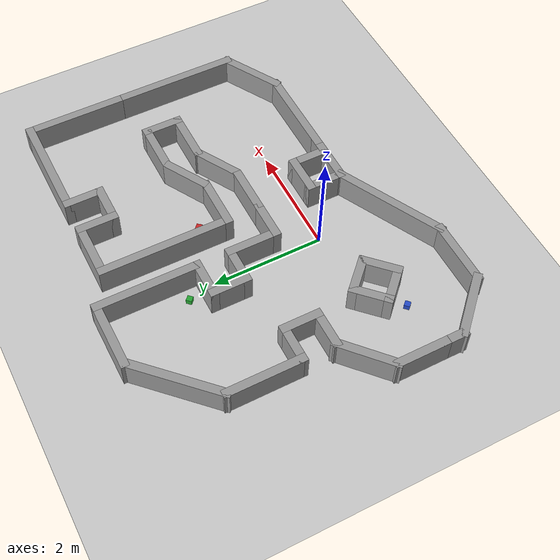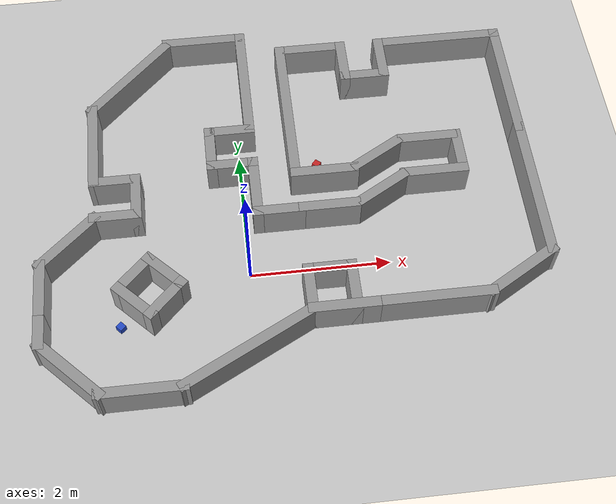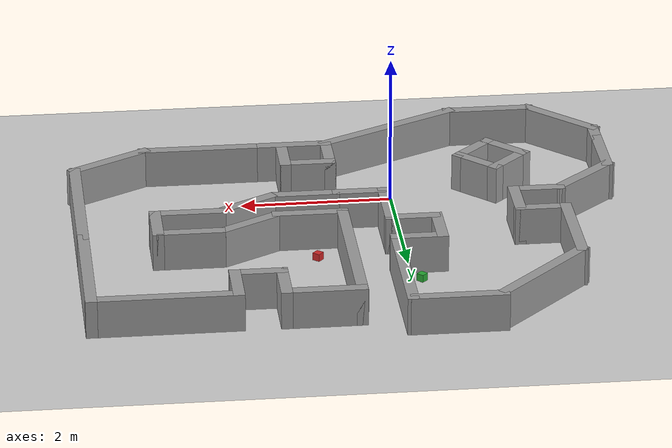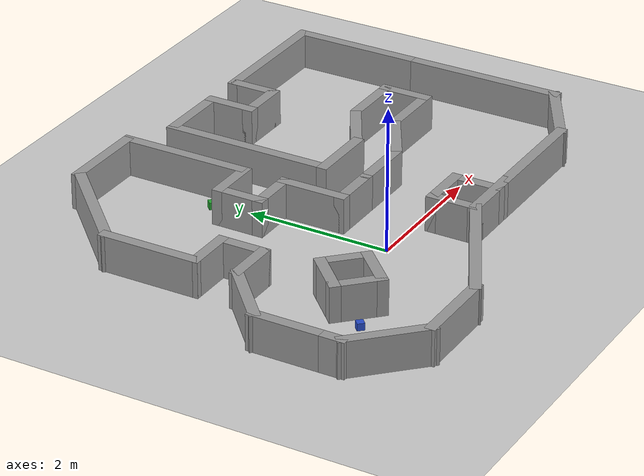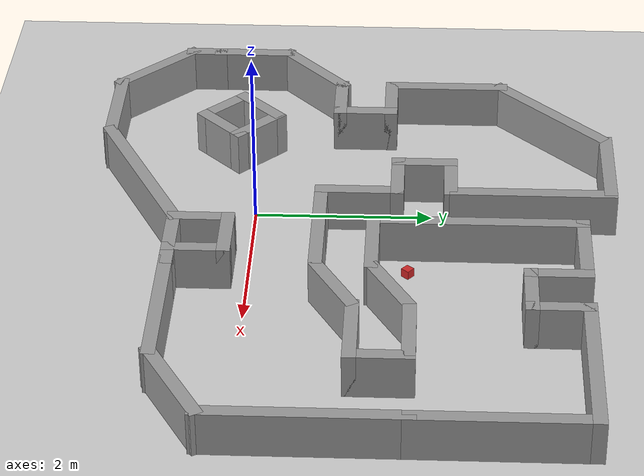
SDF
<sdf version="1.7">
 <world name="default">
  <light name="sun" type="directional">
   <pose>0 0 10 0 -0 0</pose>
   <diffuse>0.8 0.8 0.8 1</diffuse>
   <specular>0.2 0.2 0.2 1</specular>
   <attenuation>
    <range>1000</range>
    <constant>0.9</constant>
    <linear>0.01</linear>
    <quadratic>0.001</quadratic>
   </attenuation>
   <direction>-0.5 0.1 -0.9</direction>
   <spot><inner_angle>0</inner_angle><outer_angle>0</outer_angle><falloff>0</falloff></spot>
  </light>
  <model name="ground_plane">
   <static>1</static>
   <link name="link">
    <collision name="collision">
     <geometry><plane><normal>0 0 1</normal><size>100 100</size></plane></geometry>
     <surface><friction><ode><mu>100</mu><mu2>50</mu2></ode></friction></surface>
    </collision>
    <visual name="visual">
     <cast_shadows>0</cast_shadows>
     <geometry><plane><normal>0 0 1</normal><size>100 100</size></plane></geometry>
     <material>
      <script><uri>file://media/materials/scripts/gazebo.material</uri><name>Gazebo/Grey</name></script>
     </material>
    </visual>
   </link>
  </model>
  <gravity>0 0 -9.8</gravity>
  <magnetic_field>6e-06 2.3e-05 -4.2e-05</magnetic_field>
  <atmosphere type="adiabatic"/>
  <physics type="ode">
   <max_step_size>0.001</max_step_size>
   <real_time_factor>1</real_time_factor>
   <real_time_update_rate>1000</real_time_update_rate>
  </physics>
  <scene><ambient>0.4 0.4 0.4 1</ambient><background>0.7 0.7 0.7 1</background><shadows>1</shadows></scene>
  <audio><device>default</device></audio>
  <spherical_coordinates>
   <surface_model>EARTH_WGS84</surface_model>
   <latitude_deg>0</latitude_deg>
   <longitude_deg>0</longitude_deg>
   <elevation>0</elevation>
   <heading_deg>0</heading_deg>
  </spherical_coordinates>
  <model name="small_room">
   <pose>0.654132 1.13972 0 0 -0 0</pose>
   <link name="Wall_188">
    <collision name="Wall_188_Collision">
     <geometry><box><size>1 0.15 0.5</size></box></geometry>
     <pose>0 0 0.25 0 -0 0</pose>
    </collision>
    <visual name="Wall_188_Visual">
     <pose>0 0 0.25 0 -0 0</pose>
     <geometry><box><size>1 0.15 0.5</size></box></geometry>
     <material>
      <script><uri>file://media/materials/scripts/gazebo.material</uri><name>Gazebo/Grey</name></script>
      <ambient>1 1 1 1</ambient>
     </material>
     <meta><layer>0</layer></meta>
    </visual>
    <pose>0.557348 -1.97824 0 0 -0 0</pose>
   </link>
   <link name="Wall_192">
    <collision name="Wall_192_Collision">
     <geometry><box><size>1.75 0.15 0.5</size></box></geometry>
     <pose>0 0 0.25 0 -0 0</pose>
    </collision>
    <visual name="Wall_192_Visual">
     <pose>0 0 0.25 0 -0 0</pose>
     <geometry><box><size>1.75 0.15 0.5</size></box></geometry>
     <material>
      <script><uri>file://media/materials/scripts/gazebo.material</uri><name>Gazebo/Grey</name></script>
      <ambient>1 1 1 1</ambient>
     </material>
     <meta><layer>0</layer></meta>
    </visual>
    <pose>1.78235 -1.97824 0 0 -0 0</pose>
   </link>
   <link name="Wall_214">
    <collision name="Wall_214_Collision">
     <geometry><box><size>0.75 0.15 0.5</size></box></geometry>
     <pose>0 0 0.25 0 -0 0</pose>
    </collision>
    <visual name="Wall_214_Visual">
     <pose>0 0 0.25 0 -0 0</pose>
     <geometry><box><size>0.75 0.15 0.5</size></box></geometry>
     <material>
      <script><uri>file://media/materials/scripts/gazebo.material</uri><name>Gazebo/Grey</name></script>
      <ambient>1 1 1 1</ambient>
     </material>
     <meta><layer>0</layer></meta>
    </visual>
    <pose>0.132348 -1.67824 0 0 -0 1.5708</pose>
   </link>
   <link name="Wall_215">
    <collision name="Wall_215_Collision">
     <geometry><box><size>0.75 0.15 0.5</size></box></geometry>
     <pose>0 0 0.25 0 -0 0</pose>
    </collision>
    <visual name="Wall_215_Visual">
     <pose>0 0 0.25 0 -0 0</pose>
     <geometry><box><size>0.75 0.15 0.5</size></box></geometry>
     <material>
      <script><uri>file://media/materials/scripts/gazebo.material</uri><name>Gazebo/Grey</name></script>
      <ambient>1 1 1 1</ambient>
     </material>
     <meta><layer>0</layer></meta>
    </visual>
    <pose>0.432348 -1.37824 0 0 -0 0</pose>
   </link>
   <link name="Wall_218">
    <collision name="Wall_218_Collision">
     <geometry><box><size>0.75 0.15 0.5</size></box></geometry>
     <pose>0 0 0.25 0 -0 0</pose>
    </collision>
    <visual name="Wall_218_Visual">
     <pose>0 0 0.25 0 -0 0</pose>
     <geometry><box><size>0.75 0.15 0.5</size></box></geometry>
     <material>
      <script><uri>file://media/materials/scripts/gazebo.material</uri><name>Gazebo/Grey</name></script>
      <ambient>1 1 1 1</ambient>
     </material>
     <meta><layer>0</layer></meta>
    </visual>
    <pose>0.732348 -1.67824 0 0 -0 -1.5708</pose>
   </link>
   <link name="Wall_223">
    <collision name="Wall_223_Collision">
     <geometry><box><size>0.89 0.15 0.5</size></box></geometry>
     <pose>0 0 0.25 0 -0 0</pose>
    </collision>
    <visual name="Wall_223_Visual">
     <pose>0 0 0.25 0 -0 0</pose>
     <geometry><box><size>0.89 0.15 0.5</size></box></geometry>
     <material>
      <script><uri>file://media/materials/scripts/gazebo.material</uri><name>Gazebo/Grey</name></script>
      <ambient>1 1 1 1</ambient>
     </material>
     <meta><layer>0</layer></meta>
    </visual>
    <pose>2.14347 0.646756 0 0 -0 3.14159</pose>
   </link>
   <link name="Wall_226">
    <collision name="Wall_226_Collision">
     <geometry><box><size>1 0.15 0.5</size></box></geometry>
     <pose>0 0 0.25 0 -0 0</pose>
    </collision>
    <visual name="Wall_226_Visual">
     <pose>0 0 0.25 0 -0 0</pose>
     <geometry><box><size>1 0.15 0.5</size></box></geometry>
     <material>
      <script><uri>file://media/materials/scripts/gazebo.material</uri><name>Gazebo/Grey</name></script>
      <ambient>1 1 1 1</ambient>
     </material>
     <meta><layer>0</layer></meta>
    </visual>
    <pose>0.557348 0.221756 0 0 -0 3.14159</pose>
   </link>
   <link name="Wall_228">
    <collision name="Wall_228_Collision">
     <geometry><box><size>0.89 0.15 0.5</size></box></geometry>
     <pose>0 0 0.25 0 -0 0</pose>
    </collision>
    <visual name="Wall_228_Visual">
     <pose>0 0 0.25 0 -0 0</pose>
     <geometry><box><size>0.89 0.15 0.5</size></box></geometry>
     <material>
      <script><uri>file://media/materials/scripts/gazebo.material</uri><name>Gazebo/Grey</name></script>
      <ambient>1 1 1 1</ambient>
     </material>
     <meta><layer>0</layer></meta>
    </visual>
    <pose>1.35041 0.434256 0 0 -0 0.523599</pose>
   </link>
   <link name="Wall_230">
    <collision name="Wall_230_Collision">
     <geometry><box><size>1.25 0.15 0.5</size></box></geometry>
     <pose>0 0 0.25 0 -0 0</pose>
    </collision>
    <visual name="Wall_230_Visual">
     <pose>0 0 0.25 0 -0 0</pose>
     <geometry><box><size>1.25 0.15 0.5</size></box></geometry>
     <material>
      <script><uri>file://media/materials/scripts/gazebo.material</uri><name>Gazebo/Grey</name></script>
      <ambient>1 1 1 1</ambient>
     </material>
     <meta><layer>0</layer></meta>
    </visual>
    <pose>3.05866 -1.70324 0 0 -0 0.523599</pose>
   </link>
   <link name="Wall_231">
    <collision name="Wall_231_Collision">
     <geometry><box><size>2.25 0.15 0.5</size></box></geometry>
     <pose>0 0 0.25 0 -0 0</pose>
    </collision>
    <visual name="Wall_231_Visual">
     <pose>0 0 0.25 0 -0 0</pose>
     <geometry><box><size>2.25 0.15 0.5</size></box></geometry>
     <material>
      <script><uri>file://media/materials/scripts/gazebo.material</uri><name>Gazebo/Grey</name></script>
      <ambient>1 1 1 1</ambient>
     </material>
     <meta><layer>0</layer></meta>
    </visual>
    <pose>3.53498 -0.378244 0 0 -0 1.5708</pose>
   </link>
   <link name="Wall_233">
    <collision name="Wall_233_Collision">
     <geometry><box><size>2 0.15 0.5</size></box></geometry>
     <pose>0 0 0.25 0 -0 0</pose>
    </collision>
    <visual name="Wall_233_Visual">
     <pose>0 0 0.25 0 -0 0</pose>
     <geometry><box><size>2 0.15 0.5</size></box></geometry>
     <material>
      <script><uri>file://media/materials/scripts/gazebo.material</uri><name>Gazebo/Grey</name></script>
      <ambient>1 1 1 1</ambient>
     </material>
     <meta><layer>0</layer></meta>
    </visual>
    <pose>3.53498 1.59676 0 0 -0 1.5708</pose>
   </link>
   <link name="Wall_234">
    <collision name="Wall_234_Collision">
     <geometry><box><size>2 0.15 0.5</size></box></geometry>
     <pose>0 0 0.25 0 -0 0</pose>
    </collision>
    <visual name="Wall_234_Visual">
     <pose>0 0 0.25 0 -0 0</pose>
     <geometry><box><size>2 0.15 0.5</size></box></geometry>
     <material>
      <script><uri>file://media/materials/scripts/gazebo.material</uri><name>Gazebo/Grey</name></script>
      <ambient>1 1 1 1</ambient>
     </material>
     <meta><layer>0</layer></meta>
    </visual>
    <pose>2.60998 2.52176 0 0 -0 3.14159</pose>
   </link>
   <link name="Wall_235">
    <collision name="Wall_235_Collision">
     <geometry><box><size>0.75 0.15 0.5</size></box></geometry>
     <pose>0 0 0.25 0 -0 0</pose>
    </collision>
    <visual name="Wall_235_Visual">
     <pose>0 0 0.25 0 -0 0</pose>
     <geometry><box><size>0.75 0.15 0.5</size></box></geometry>
     <material>
      <script><uri>file://media/materials/scripts/gazebo.material</uri><name>Gazebo/Grey</name></script>
      <ambient>1 1 1 1</ambient>
     </material>
     <meta><layer>0</layer></meta>
    </visual>
    <pose>1.68498 2.22176 0 0 -0 -1.5708</pose>
   </link>
   <link name="Wall_236">
    <collision name="Wall_236_Collision">
     <geometry><box><size>0.75 0.15 0.5</size></box></geometry>
     <pose>0 0 0.25 0 -0 0</pose>
    </collision>
    <visual name="Wall_236_Visual">
     <pose>0 0 0.25 0 -0 0</pose>
     <geometry><box><size>0.75 0.15 0.5</size></box></geometry>
     <material>
      <script><uri>file://media/materials/scripts/gazebo.material</uri><name>Gazebo/Grey</name></script>
      <ambient>1 1 1 1</ambient>
     </material>
     <meta><layer>0</layer></meta>
    </visual>
    <pose>1.38498 1.92176 0 0 -0 3.14159</pose>
   </link>
   <link name="Wall_237">
    <collision name="Wall_237_Collision">
     <geometry><box><size>0.75 0.15 0.5</size></box></geometry>
     <pose>0 0 0.25 0 -0 0</pose>
    </collision>
    <visual name="Wall_237_Visual">
     <pose>0 0 0.25 0 -0 0</pose>
     <geometry><box><size>0.75 0.15 0.5</size></box></geometry>
     <material>
      <script><uri>file://media/materials/scripts/gazebo.material</uri><name>Gazebo/Grey</name></script>
      <ambient>1 1 1 1</ambient>
     </material>
     <meta><layer>0</layer></meta>
    </visual>
    <pose>1.08498 2.22176 0 0 -0 1.5708</pose>
   </link>
   <link name="Wall_238">
    <collision name="Wall_238_Collision">
     <geometry><box><size>0.95 0.15 0.5</size></box></geometry>
     <pose>0 0 0.25 0 -0 0</pose>
    </collision>
    <visual name="Wall_238_Visual">
     <pose>0 0 0.25 0 -0 0</pose>
     <geometry><box><size>0.95 0.15 0.5</size></box></geometry>
     <material>
      <script><uri>file://media/materials/scripts/gazebo.material</uri><name>Gazebo/Grey</name></script>
      <ambient>1 1 1 1</ambient>
     </material>
     <meta><layer>0</layer></meta>
    </visual>
    <pose>0.534976 2.52176 0 0 -0 3.14159</pose>
   </link>
   <link name="Wall_249">
    <collision name="Wall_249_Collision">
     <geometry><box><size>2.4 0.15 0.5</size></box></geometry>
     <pose>0 0 0.25 0 -0 0</pose>
    </collision>
    <visual name="Wall_249_Visual">
     <pose>0 0 0.25 0 -0 0</pose>
     <geometry><box><size>2.4 0.15 0.5</size></box></geometry>
     <material>
      <script><uri>file://media/materials/scripts/gazebo.material</uri><name>Gazebo/Grey</name></script>
      <ambient>1 1 1 1</ambient>
     </material>
     <meta><layer>0</layer></meta>
    </visual>
    <pose>0.132348 1.39676 0 0 -0 1.5708</pose>
   </link>
   <link name="Wall_251">
    <collision name="Wall_251_Collision">
     <geometry><box><size>0.75 0.15 0.5</size></box></geometry>
     <pose>0 0 0.25 0 -0 0</pose>
    </collision>
    <visual name="Wall_251_Visual">
     <pose>0 0 0.25 0 -0 0</pose>
     <geometry><box><size>0.75 0.15 0.5</size></box></geometry>
     <material>
      <script><uri>file://media/materials/scripts/gazebo.material</uri><name>Gazebo/Grey</name></script>
      <ambient>1 1 1 1</ambient>
     </material>
     <meta><layer>0</layer></meta>
    </visual>
    <pose>2.56847 0.346756 0 0 -0 -1.5708</pose>
   </link>
   <link name="Wall_252">
    <collision name="Wall_252_Collision">
     <geometry><box><size>1 0.15 0.5</size></box></geometry>
     <pose>0 0 0.25 0 -0 0</pose>
    </collision>
    <visual name="Wall_252_Visual">
     <pose>0 0 0.25 0 -0 0</pose>
     <geometry><box><size>1 0.15 0.5</size></box></geometry>
     <material>
      <script><uri>file://media/materials/scripts/gazebo.material</uri><name>Gazebo/Grey</name></script>
      <ambient>1 1 1 1</ambient>
     </material>
     <meta><layer>0</layer></meta>
    </visual>
    <pose>2.14347 0.046756 0 0 -0 3.14159</pose>
   </link>
   <link name="Wall_253">
    <collision name="Wall_253_Collision">
     <geometry><box><size>0.89 0.15 0.5</size></box></geometry>
     <pose>0 0 0.25 0 -0 0</pose>
    </collision>
    <visual name="Wall_253_Visual">
     <pose>0 0 0.25 0 -0 0</pose>
     <geometry><box><size>0.89 0.15 0.5</size></box></geometry>
     <material>
      <script><uri>file://media/materials/scripts/gazebo.material</uri><name>Gazebo/Grey</name></script>
      <ambient>1 1 1 1</ambient>
     </material>
     <meta><layer>0</layer></meta>
    </visual>
    <pose>1.35041 -0.165744 0 0 -0 -2.61799</pose>
   </link>
   <link name="Wall_254">
    <collision name="Wall_254_Collision">
     <geometry><box><size>0.89 0.15 0.5</size></box></geometry>
     <pose>0 0 0.25 0 -0 0</pose>
    </collision>
    <visual name="Wall_254_Visual">
     <pose>0 0 0.25 0 -0 0</pose>
     <geometry><box><size>0.89 0.15 0.5</size></box></geometry>
     <material>
      <script><uri>file://media/materials/scripts/gazebo.material</uri><name>Gazebo/Grey</name></script>
      <ambient>1 1 1 1</ambient>
     </material>
     <meta><layer>0</layer></meta>
    </visual>
    <pose>0.557348 -0.378244 0 0 -0 3.14159</pose>
   </link>
   <link name="Wall_256">
    <collision name="Wall_256_Collision">
     <geometry><box><size>0.75 0.15 0.5</size></box></geometry>
     <pose>0 0 0.25 0 -0 0</pose>
    </collision>
    <visual name="Wall_256_Visual">
     <pose>0 0 0.25 0 -0 0</pose>
     <geometry><box><size>0.75 0.15 0.5</size></box></geometry>
     <material>
      <script><uri>file://media/materials/scripts/gazebo.material</uri><name>Gazebo/Grey</name></script>
      <ambient>1 1 1 1</ambient>
     </material>
     <meta><layer>0</layer></meta>
    </visual>
    <pose>-0.167652 -0.378244 0 0 -0 3.14159</pose>
   </link>
   <link name="Wall_257">
    <collision name="Wall_257_Collision">
     <geometry><box><size>1 0.15 0.5</size></box></geometry>
     <pose>0 0 0.25 0 -0 0</pose>
    </collision>
    <visual name="Wall_257_Visual">
     <pose>0 0 0.25 0 -0 0</pose>
     <geometry><box><size>1 0.15 0.5</size></box></geometry>
     <material>
      <script><uri>file://media/materials/scripts/gazebo.material</uri><name>Gazebo/Grey</name></script>
      <ambient>1 1 1 1</ambient>
     </material>
     <meta><layer>0</layer></meta>
    </visual>
    <pose>-0.467652 0.046756 0 0 -0 1.5708</pose>
   </link>
   <link name="Wall_258">
    <collision name="Wall_258_Collision">
     <geometry><box><size>0.75 0.15 0.5</size></box></geometry>
     <pose>0 0 0.25 0 -0 0</pose>
    </collision>
    <visual name="Wall_258_Visual">
     <pose>0 0 0.25 0 -0 0</pose>
     <geometry><box><size>0.75 0.15 0.5</size></box></geometry>
     <material>
      <script><uri>file://media/materials/scripts/gazebo.material</uri><name>Gazebo/Grey</name></script>
      <ambient>1 1 1 1</ambient>
     </material>
     <meta><layer>0</layer></meta>
    </visual>
    <pose>-0.767652 0.471756 0 0 -0 3.14159</pose>
   </link>
   <link name="Wall_259">
    <collision name="Wall_259_Collision">
     <geometry><box><size>0.75 0.15 0.5</size></box></geometry>
     <pose>0 0 0.25 0 -0 0</pose>
    </collision>
    <visual name="Wall_259_Visual">
     <pose>0 0 0.25 0 -0 0</pose>
     <geometry><box><size>0.75 0.15 0.5</size></box></geometry>
     <material>
      <script><uri>file://media/materials/scripts/gazebo.material</uri><name>Gazebo/Grey</name></script>
      <ambient>1 1 1 1</ambient>
     </material>
     <meta><layer>0</layer></meta>
    </visual>
    <pose>-1.06765 0.771756 0 0 -0 1.5708</pose>
   </link>
   <link name="Wall_260">
    <collision name="Wall_260_Collision">
     <geometry><box><size>0.75 0.15 0.5</size></box></geometry>
     <pose>0 0 0.25 0 -0 0</pose>
    </collision>
    <visual name="Wall_260_Visual">
     <pose>0 0 0.25 0 -0 0</pose>
     <geometry><box><size>0.75 0.15 0.5</size></box></geometry>
     <material>
      <script><uri>file://media/materials/scripts/gazebo.material</uri><name>Gazebo/Grey</name></script>
      <ambient>1 1 1 1</ambient>
     </material>
     <meta><layer>0</layer></meta>
    </visual>
    <pose>-0.767652 1.07176 0 0 -0 0</pose>
   </link>
   <link name="Wall_261">
    <collision name="Wall_261_Collision">
     <geometry><box><size>1.88 0.15 0.5</size></box></geometry>
     <pose>0 0 0.25 0 -0 0</pose>
    </collision>
    <visual name="Wall_261_Visual">
     <pose>0 0 0.25 0 -0 0</pose>
     <geometry><box><size>1.88 0.15 0.5</size></box></geometry>
     <material>
      <script><uri>file://media/materials/scripts/gazebo.material</uri><name>Gazebo/Grey</name></script>
      <ambient>1 1 1 1</ambient>
     </material>
     <meta><layer>0</layer></meta>
    </visual>
    <pose>-0.467652 1.99676 0 0 -0 1.5708</pose>
   </link>
   <link name="Wall_270">
    <collision name="Wall_270_Collision">
     <geometry><box><size>1.75 0.15 0.5</size></box></geometry>
     <pose>0 0 0.25 0 -0 0</pose>
    </collision>
    <visual name="Wall_270_Visual">
     <pose>0 0 0.25 0 -0 0</pose>
     <geometry><box><size>1.75 0.15 0.5</size></box></geometry>
     <material>
      <script><uri>file://media/materials/scripts/gazebo.material</uri><name>Gazebo/Grey</name></script>
      <ambient>1 1 1 1</ambient>
     </material>
     <meta><layer>0</layer></meta>
    </visual>
    <pose>-2.22062 2.23744 0 0 -0 0.785398</pose>
   </link>
   <link name="Wall_271">
    <collision name="Wall_271_Collision">
     <geometry><box><size>1.25 0.15 0.5</size></box></geometry>
     <pose>0 0 0.25 0 -0 0</pose>
    </collision>
    <visual name="Wall_271_Visual">
     <pose>0 0 0.25 0 -0 0</pose>
     <geometry><box><size>1.25 0.15 0.5</size></box></geometry>
     <material>
      <script><uri>file://media/materials/scripts/gazebo.material</uri><name>Gazebo/Grey</name></script>
      <ambient>1 1 1 1</ambient>
     </material>
     <meta><layer>0</layer></meta>
    </visual>
    <pose>-1.06129 2.86244 0 0 -0 0</pose>
   </link>
   <link name="Wall_273">
    <collision name="Wall_273_Collision">
     <geometry><box><size>0.75 0.15 0.5</size></box></geometry>
     <pose>0 0 0.25 0 -0 0</pose>
    </collision>
    <visual name="Wall_273_Visual">
     <pose>0 0 0.25 0 -0 0</pose>
     <geometry><box><size>0.75 0.15 0.5</size></box></geometry>
     <material>
      <script><uri>file://media/materials/scripts/gazebo.material</uri><name>Gazebo/Grey</name></script>
      <ambient>1 1 1 1</ambient>
     </material>
     <meta><layer>0</layer></meta>
    </visual>
    <pose>-2.48408 -0.237694 0 0 -0 0</pose>
   </link>
   <link name="Wall_274">
    <collision name="Wall_274_Collision">
     <geometry><box><size>0.75 0.15 0.5</size></box></geometry>
     <pose>0 0 0.25 0 -0 0</pose>
    </collision>
    <visual name="Wall_274_Visual">
     <pose>0 0 0.25 0 -0 0</pose>
     <geometry><box><size>0.75 0.15 0.5</size></box></geometry>
     <material>
      <script><uri>file://media/materials/scripts/gazebo.material</uri><name>Gazebo/Grey</name></script>
      <ambient>1 1 1 1</ambient>
     </material>
     <meta><layer>0</layer></meta>
    </visual>
    <pose>-2.18408 0.062306 0 0 -0 1.5708</pose>
   </link>
   <link name="Wall_275">
    <collision name="Wall_275_Collision">
     <geometry><box><size>0.75 0.15 0.5</size></box></geometry>
     <pose>0 0 0.25 0 -0 0</pose>
    </collision>
    <visual name="Wall_275_Visual">
     <pose>0 0 0.25 0 -0 0</pose>
     <geometry><box><size>0.75 0.15 0.5</size></box></geometry>
     <material>
      <script><uri>file://media/materials/scripts/gazebo.material</uri><name>Gazebo/Grey</name></script>
      <ambient>1 1 1 1</ambient>
     </material>
     <meta><layer>0</layer></meta>
    </visual>
    <pose>-2.48408 0.362306 0 0 -0 3.14159</pose>
   </link>
   <link name="Wall_296">
    <collision name="Wall_296_Collision">
     <geometry><box><size>1.16188 0.15 0.5</size></box></geometry>
     <pose>0 0 0.25 0 -0 0</pose>
    </collision>
    <visual name="Wall_296_Visual">
     <pose>0 0 0.25 0 -0 0</pose>
     <geometry><box><size>1.16188 0.15 0.5</size></box></geometry>
     <material>
      <script><uri>file://media/materials/scripts/gazebo.material</uri><name>Gazebo/Grey</name></script>
      <ambient>1 1 1 1</ambient>
     </material>
     <meta><layer>0</layer></meta>
    </visual>
    <pose>-3.15772 -0.578826 0 0 -0 0.739951</pose>
   </link>
   <link name="Wall_302">
    <collision name="Wall_302_Collision">
     <geometry><box><size>1.45945 0.15 0.5</size></box></geometry>
     <pose>0 0 0.25 0 -0 0</pose>
    </collision>
    <visual name="Wall_302_Visual">
     <pose>0 0 0.25 0 -0 0</pose>
     <geometry><box><size>1.45945 0.15 0.5</size></box></geometry>
     <material>
      <script><uri>file://media/materials/scripts/gazebo.material</uri><name>Gazebo/Grey</name></script>
      <ambient>1 1 1 1</ambient>
     </material>
     <meta><layer>0</layer></meta>
    </visual>
    <pose>-2.78519 1.01703 0 0 -0 1.57249</pose>
   </link>
   <link name="Wall_304">
    <collision name="Wall_304_Collision">
     <geometry><box><size>1 0.15 0.5</size></box></geometry>
     <pose>0 0 0.25 0 -0 0</pose>
    </collision>
    <visual name="Wall_304_Visual">
     <pose>0 0 0.25 0 -0 0</pose>
     <geometry><box><size>1 0.15 0.5</size></box></geometry>
     <material>
      <script><uri>file://media/materials/scripts/gazebo.material</uri><name>Gazebo/Grey</name></script>
      <ambient>1 1 1 1</ambient>
     </material>
     <meta><layer>0</layer></meta>
    </visual>
    <pose>-3.53136 -1.34496 0 0 -0 -1.5708</pose>
   </link>
   <link name="Wall_313">
    <collision name="Wall_313_Collision">
     <geometry><box><size>0.75 0.15 0.5</size></box></geometry>
     <pose>0 0 0.25 0 -0 0</pose>
    </collision>
    <visual name="Wall_313_Visual">
     <pose>0 0 0.25 0 -0 0</pose>
     <geometry><box><size>0.75 0.15 0.5</size></box></geometry>
     <material>
      <script><uri>file://media/materials/scripts/gazebo.material</uri><name>Gazebo/Grey</name></script>
      <ambient>1 1 1 1</ambient>
     </material>
     <meta><layer>0</layer></meta>
    </visual>
    <pose>-2.25341 -1.18632 0 0 -0 0.785398</pose>
   </link>
   <link name="Wall_314">
    <collision name="Wall_314_Collision">
     <geometry><box><size>0.75 0.15 0.5</size></box></geometry>
     <pose>0 0 0.25 0 -0 0</pose>
    </collision>
    <visual name="Wall_314_Visual">
     <pose>0 0 0.25 0 -0 0</pose>
     <geometry><box><size>0.75 0.15 0.5</size></box></geometry>
     <material>
      <script><uri>file://media/materials/scripts/gazebo.material</uri><name>Gazebo/Grey</name></script>
      <ambient>1 1 1 1</ambient>
     </material>
     <meta><layer>0</layer></meta>
    </visual>
    <pose>-1.82915 -1.18632 0 0 -0 -0.785398</pose>
   </link>
   <link name="Wall_315">
    <collision name="Wall_315_Collision">
     <geometry><box><size>0.75 0.15 0.5</size></box></geometry>
     <pose>0 0 0.25 0 -0 0</pose>
    </collision>
    <visual name="Wall_315_Visual">
     <pose>0 0 0.25 0 -0 0</pose>
     <geometry><box><size>0.75 0.15 0.5</size></box></geometry>
     <material>
      <script><uri>file://media/materials/scripts/gazebo.material</uri><name>Gazebo/Grey</name></script>
      <ambient>1 1 1 1</ambient>
     </material>
     <meta><layer>0</layer></meta>
    </visual>
    <pose>-1.82915 -1.61058 0 0 -0 -2.35619</pose>
   </link>
   <link name="Wall_316">
    <collision name="Wall_316_Collision">
     <geometry><box><size>0.75 0.15 0.5</size></box></geometry>
     <pose>0 0 0.25 0 -0 0</pose>
    </collision>
    <visual name="Wall_316_Visual">
     <pose>0 0 0.25 0 -0 0</pose>
     <geometry><box><size>0.75 0.15 0.5</size></box></geometry>
     <material>
      <script><uri>file://media/materials/scripts/gazebo.material</uri><name>Gazebo/Grey</name></script>
      <ambient>1 1 1 1</ambient>
     </material>
     <meta><layer>0</layer></meta>
    </visual>
    <pose>-2.25341 -1.61058 0 0 -0 2.35619</pose>
   </link>
   <link name="Wall_318">
    <collision name="Wall_318_Collision">
     <geometry><box><size>0.5 0.15 0.5</size></box></geometry>
     <pose>0 0 0.25 0 -0 0</pose>
    </collision>
    <visual name="Wall_318_Visual">
     <pose>0 0 0.25 0 -0 0</pose>
     <geometry><box><size>0.5 0.15 0.5</size></box></geometry>
     <material>
      <script><uri>file://media/materials/scripts/gazebo.material</uri><name>Gazebo/Grey</name></script>
      <ambient>1 1 1 1</ambient>
     </material>
     <meta><layer>0</layer></meta>
    </visual>
    <pose>-3.53136 -1.94496 0 0 -0 -1.5708</pose>
   </link>
   <link name="Wall_319">
    <collision name="Wall_319_Collision">
     <geometry><box><size>1.25 0.15 0.5</size></box></geometry>
     <pose>0 0 0.25 0 -0 0</pose>
    </collision>
    <visual name="Wall_319_Visual">
     <pose>0 0 0.25 0 -0 0</pose>
     <geometry><box><size>1.25 0.15 0.5</size></box></geometry>
     <material>
      <script><uri>file://media/materials/scripts/gazebo.material</uri><name>Gazebo/Grey</name></script>
      <ambient>1 1 1 1</ambient>
     </material>
     <meta><layer>0</layer></meta>
    </visual>
    <pose>-3.14245 -2.50887 0 0 -0 -0.785398</pose>
   </link>
   <link name="Wall_320">
    <collision name="Wall_320_Collision">
     <geometry><box><size>1.25 0.15 0.5</size></box></geometry>
     <pose>0 0 0.25 0 -0 0</pose>
    </collision>
    <visual name="Wall_320_Visual">
     <pose>0 0 0.25 0 -0 0</pose>
     <geometry><box><size>1.25 0.15 0.5</size></box></geometry>
     <material>
      <script><uri>file://media/materials/scripts/gazebo.material</uri><name>Gazebo/Grey</name></script>
      <ambient>1 1 1 1</ambient>
     </material>
     <meta><layer>0</layer></meta>
    </visual>
    <pose>-2.20355 -2.89778 0 0 -0 0</pose>
   </link>
   <link name="Wall_321">
    <collision name="Wall_321_Collision">
     <geometry><box><size>2.15872 0.15 0.5</size></box></geometry>
     <pose>0 0 0.25 0 -0 0</pose>
    </collision>
    <visual name="Wall_321_Visual">
     <pose>0 0 0.25 0 -0 0</pose>
     <geometry><box><size>2.15872 0.15 0.5</size></box></geometry>
     <material>
      <script><uri>file://media/materials/scripts/gazebo.material</uri><name>Gazebo/Grey</name></script>
      <ambient>1 1 1 1</ambient>
     </material>
     <meta><layer>0</layer></meta>
    </visual>
    <pose>-0.760598 -2.43801 0 0 -0 0.475485</pose>
   </link>
   <static>1</static>
  </model>
  <model name="TaskA">
   <link name="link">
    <pose>0 0 0.05 0 -0 0</pose>
    <inertial>
     <mass>0.5167</mass>
     <inertia>
      <ixx>0.000861167</ixx>
      <ixy>0</ixy>
      <ixz>0</ixz>
      <iyy>0.000861167</iyy>
      <iyz>0</iyz>
      <izz>0.000861167</izz>
     </inertia>
    </inertial>
    <collision name="collision">
     <geometry><box><size>0.1 0.1 0.1</size></box></geometry>
     <surface>
      <contact>
       <poissons_ratio>0.347</poissons_ratio>
       <elastic_modulus>8.8e+09</elastic_modulus>
       <ode><kp>100000</kp><kd>100</kd><max_vel>100</max_vel><min_depth>0.001</min_depth></ode>
      </contact>
      <friction>
       <torsional>
        <coefficient>1</coefficient>
        <use_patch_radius>0</use_patch_radius>
        <surface_radius>0.01</surface_radius>
       </torsional>
      </friction>
     </surface>
    </collision>
    <visual name="visual">
     <geometry><box><size>0.1 0.1 0.1</size></box></geometry>
     <material>
      <script><uri>file://media/materials/scripts/gazebo.material</uri><name>Gazebo/Red</name></script>
     </material>
    </visual>
   </link>
   <pose>1.14694 1.75113 -0.001013 0 0 -0.706895</pose>
  </model>
  <model name="TaskB">
   <link name="link">
    <pose>0 0 0.05 0 -0 0</pose>
    <inertial>
     <mass>0.5167</mass>
     <inertia>
      <ixx>0.000861167</ixx>
      <ixy>0</ixy>
      <ixz>0</ixz>
      <iyy>0.000861167</iyy>
      <iyz>0</iyz>
      <izz>0.000861167</izz>
     </inertia>
    </inertial>
    <collision name="collision">
     <geometry><box><size>0.1 0.1 0.1</size></box></geometry>
     <surface>
      <contact>
       <poissons_ratio>0.347</poissons_ratio>
       <elastic_modulus>8.8e+09</elastic_modulus>
       <ode><kp>100000</kp><kd>100</kd><max_vel>100</max_vel><min_depth>0.001</min_depth></ode>
      </contact>
      <friction>
       <torsional>
        <coefficient>1</coefficient>
        <use_patch_radius>0</use_patch_radius>
        <surface_radius>0.01</surface_radius>
       </torsional>
      </friction>
     </surface>
    </collision>
    <visual name="visual">
     <geometry><box><size>0.1 0.1 0.1</size></box></geometry>
     <material>
      <script><uri>file://media/materials/scripts/gazebo.material</uri><name>Gazebo/Blue</name></script>
     </material>
    </visual>
   </link>
   <pose>-1.83313 -0.640061 -0.001013 0 0 -0.815012</pose>
  </model>
  <model name="TaskC">
   <link name="link">
    <pose>0 0 0.05 0 -0 0</pose>
    <inertial>
     <mass>0.5167</mass>
     <inertia>
      <ixx>0.000861167</ixx>
      <ixy>0</ixy>
      <ixz>0</ixz>
      <iyy>0.000861167</iyy>
      <iyz>0</iyz>
      <izz>0.000861167</izz>
     </inertia>
    </inertial>
    <collision name="collision">
     <geometry><box><size>0.1 0.1 0.1</size></box></geometry>
     <surface>
      <contact>
       <poissons_ratio>0.347</poissons_ratio>
       <elastic_modulus>8.8e+09</elastic_modulus>
       <ode><kp>100000</kp><kd>100</kd><max_vel>100</max_vel><min_depth>0.001</min_depth></ode>
      </contact>
      <friction>
       <torsional>
        <coefficient>1</coefficient>
        <use_patch_radius>0</use_patch_radius>
        <surface_radius>0.01</surface_radius>
       </torsional>
      </friction>
     </surface>
    </collision>
    <visual name="visual">
     <geometry><box><size>0.1 0.1 0.1</size></box></geometry>
     <material>
      <script><uri>file://media/materials/scripts/gazebo.material</uri><name>Gazebo/Green</name></script>
     </material>
    </visual>
   </link>
   <pose>-0.117466 2.51361 -0.001013 0 -0 0.791175</pose>
  </model>
 </world>
</sdf>
